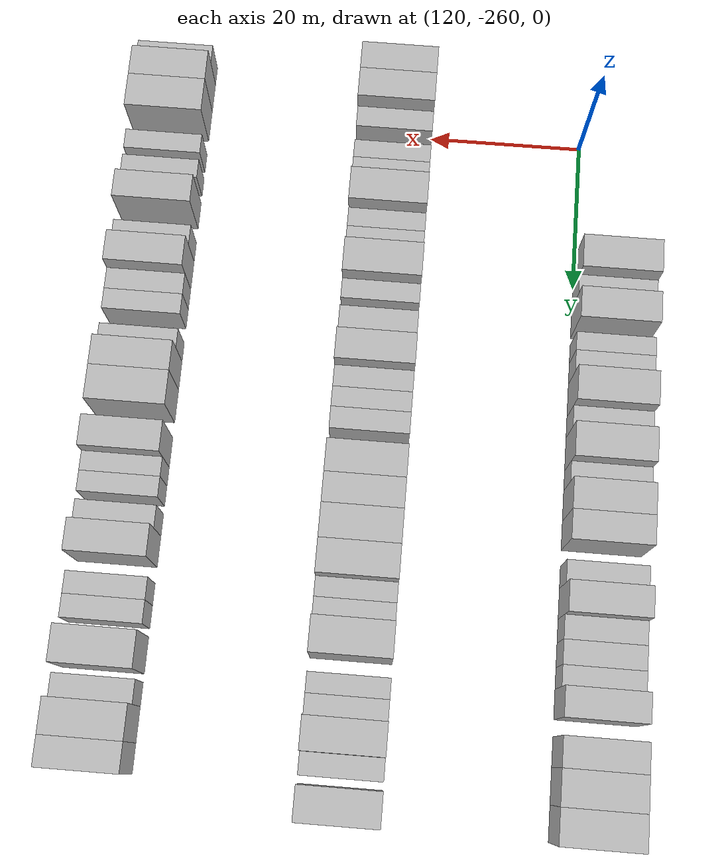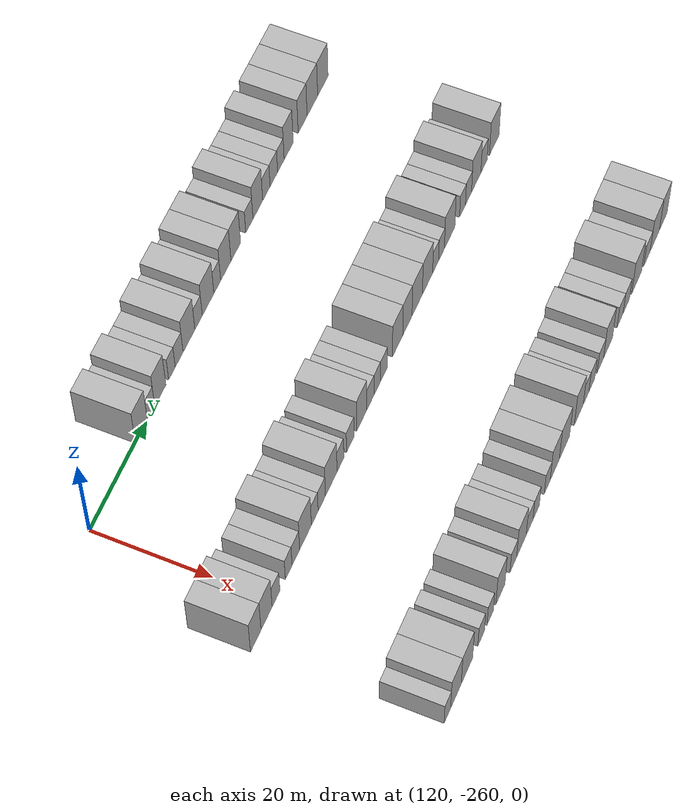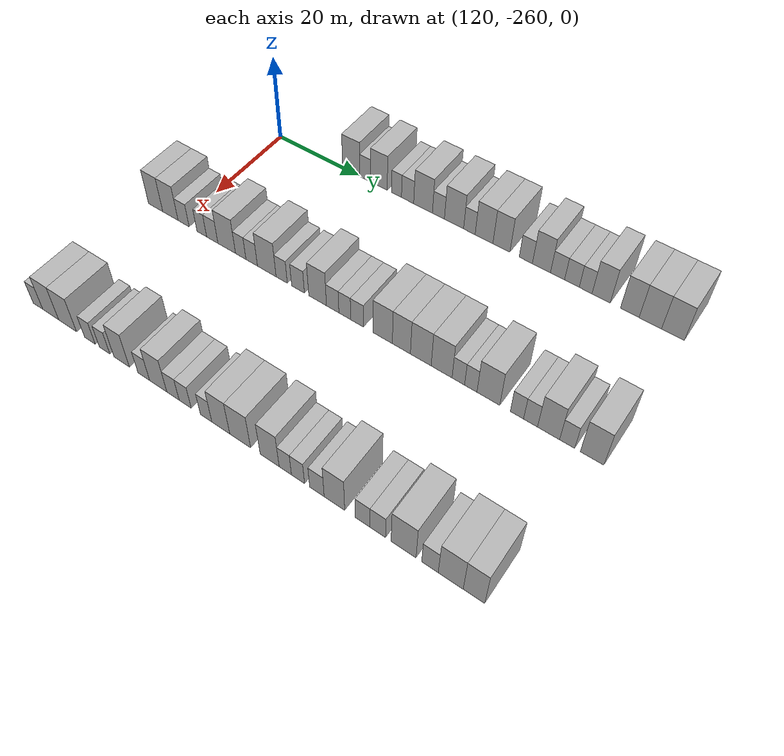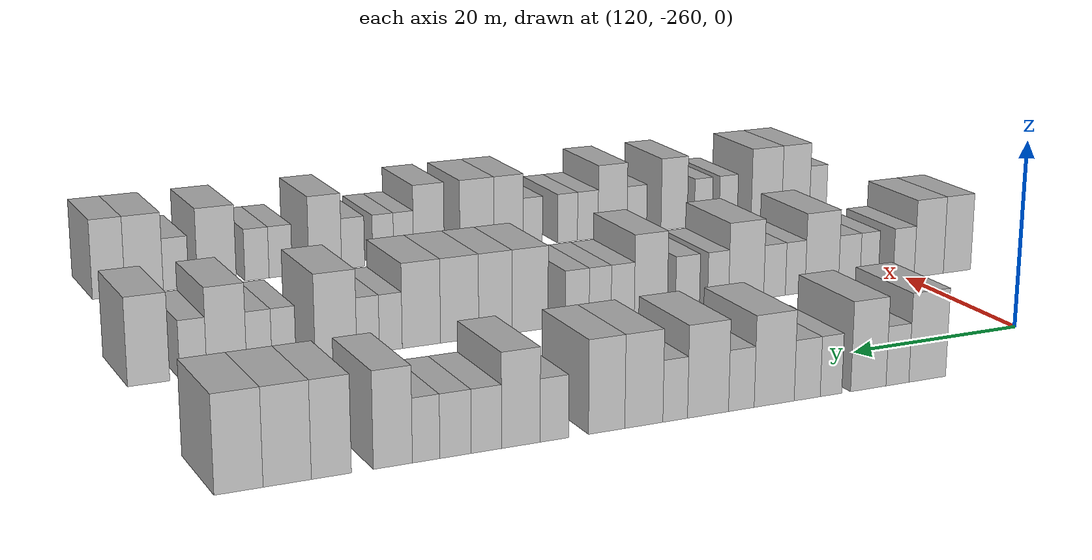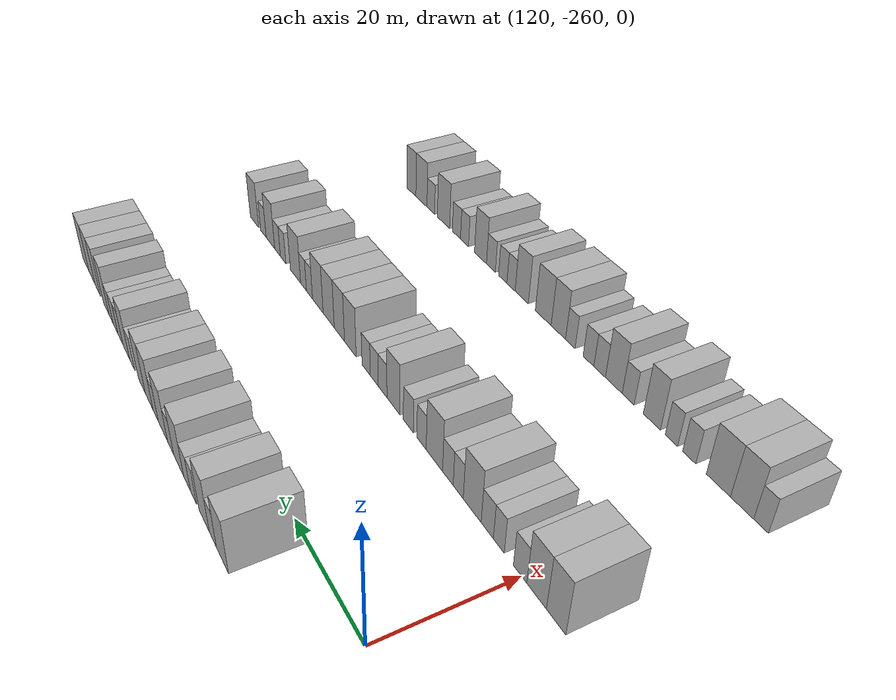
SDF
<sdf version="1.6">
 <world name="default">
  <model name="building_742">
   <static>1</static>
   <pose>115.0000 -241.9477 0 0.000000 0.000000 0.000000</pose>
   <link name="link">
    <pose>0 0 4.50 0 0 0</pose>
    <collision name="collision"><geometry><box><size>10.0000 4.2830 9.0000</size></box></geometry></collision>
    <visual name="visual">
     <cast_shadows>0</cast_shadows>
     <geometry><box><size>10.0000 4.2830 9.0000</size></box></geometry>
     <material>
      <script>
       <uri>model://HANNAS_wall/materials/scripts</uri>
       <uri>model://HANNAS_wall/materials/textures</uri>
       <name>vrc/HANNAS_wall</name>
      </script>
     </material>
    </visual>
   </link>
  </model>
  <model name="building_743">
   <static>1</static>
   <pose>115.0000 -238.4895 0 0.000000 0.000000 0.000000</pose>
   <link name="link">
    <pose>0 0 3.00 0 0 0</pose>
    <collision name="collision"><geometry><box><size>10.0000 2.6334 6.0000</size></box></geometry></collision>
    <visual name="visual">
     <cast_shadows>0</cast_shadows>
     <geometry><box><size>10.0000 2.6334 6.0000</size></box></geometry>
     <material>
      <script>
       <uri>model://HANNAS_wall/materials/scripts</uri>
       <uri>model://HANNAS_wall/materials/textures</uri>
       <name>vrc/HANNAS_wall</name>
      </script>
     </material>
    </visual>
   </link>
  </model>
  <model name="building_744">
   <static>1</static>
   <pose>115.0000 -235.1634 0 0.000000 0.000000 0.000000</pose>
   <link name="link">
    <pose>0 0 4.50 0 0 0</pose>
    <collision name="collision"><geometry><box><size>10.0000 4.0189 9.0000</size></box></geometry></collision>
    <visual name="visual">
     <cast_shadows>0</cast_shadows>
     <geometry><box><size>10.0000 4.0189 9.0000</size></box></geometry>
     <material>
      <script>
       <uri>model://HANNAS_wall/materials/scripts</uri>
       <uri>model://HANNAS_wall/materials/textures</uri>
       <name>vrc/HANNAS_wall</name>
      </script>
     </material>
    </visual>
   </link>
  </model>
  <model name="building_745">
   <static>1</static>
   <pose>115.0000 -230.9508 0 0.000000 0.000000 0.000000</pose>
   <link name="link">
    <pose>0 0 3.00 0 0 0</pose>
    <collision name="collision"><geometry><box><size>10.0000 2.4063 6.0000</size></box></geometry></collision>
    <visual name="visual">
     <cast_shadows>0</cast_shadows>
     <geometry><box><size>10.0000 2.4063 6.0000</size></box></geometry>
     <material>
      <script>
       <uri>model://HANNAS_wall/materials/scripts</uri>
       <uri>model://HANNAS_wall/materials/textures</uri>
       <name>vrc/HANNAS_wall</name>
      </script>
     </material>
    </visual>
   </link>
  </model>
  <model name="building_746">
   <static>1</static>
   <pose>115.0000 -228.3101 0 0.000000 0.000000 0.000000</pose>
   <link name="link">
    <pose>0 0 3.00 0 0 0</pose>
    <collision name="collision"><geometry><box><size>10.0000 2.8751 6.0000</size></box></geometry></collision>
    <visual name="visual">
     <cast_shadows>0</cast_shadows>
     <geometry><box><size>10.0000 2.8751 6.0000</size></box></geometry>
     <material>
      <script>
       <uri>model://HANNAS_wall/materials/scripts</uri>
       <uri>model://HANNAS_wall/materials/textures</uri>
       <name>vrc/HANNAS_wall</name>
      </script>
     </material>
    </visual>
   </link>
  </model>
  <model name="building_747">
   <static>1</static>
   <pose>115.0000 -224.6916 0 0.000000 0.000000 0.000000</pose>
   <link name="link">
    <pose>0 0 4.50 0 0 0</pose>
    <collision name="collision"><geometry><box><size>10.0000 4.3619 9.0000</size></box></geometry></collision>
    <visual name="visual">
     <cast_shadows>0</cast_shadows>
     <geometry><box><size>10.0000 4.3619 9.0000</size></box></geometry>
     <material>
      <script>
       <uri>model://HANNAS_wall/materials/scripts</uri>
       <uri>model://HANNAS_wall/materials/textures</uri>
       <name>vrc/HANNAS_wall</name>
      </script>
     </material>
    </visual>
   </link>
  </model>
  <model name="building_748">
   <static>1</static>
   <pose>115.0000 -221.1343 0 0.000000 0.000000 0.000000</pose>
   <link name="link">
    <pose>0 0 3.00 0 0 0</pose>
    <collision name="collision"><geometry><box><size>10.0000 2.7526 6.0000</size></box></geometry></collision>
    <visual name="visual">
     <cast_shadows>0</cast_shadows>
     <geometry><box><size>10.0000 2.7526 6.0000</size></box></geometry>
     <material>
      <script>
       <uri>model://HANNAS_wall/materials/scripts</uri>
       <uri>model://HANNAS_wall/materials/textures</uri>
       <name>vrc/HANNAS_wall</name>
      </script>
     </material>
    </visual>
   </link>
  </model>
  <model name="building_749">
   <static>1</static>
   <pose>115.0000 -217.5880 0 0.000000 0.000000 0.000000</pose>
   <link name="link">
    <pose>0 0 4.50 0 0 0</pose>
    <collision name="collision"><geometry><box><size>10.0000 4.3400 9.0000</size></box></geometry></collision>
    <visual name="visual">
     <cast_shadows>0</cast_shadows>
     <geometry><box><size>10.0000 4.3400 9.0000</size></box></geometry>
     <material>
      <script>
       <uri>model://HANNAS_wall/materials/scripts</uri>
       <uri>model://HANNAS_wall/materials/textures</uri>
       <name>vrc/HANNAS_wall</name>
      </script>
     </material>
    </visual>
   </link>
  </model>
  <model name="building_750">
   <static>1</static>
   <pose>115.0000 -214.1314 0 0.000000 0.000000 0.000000</pose>
   <link name="link">
    <pose>0 0 3.00 0 0 0</pose>
    <collision name="collision"><geometry><box><size>10.0000 2.5733 6.0000</size></box></geometry></collision>
    <visual name="visual">
     <cast_shadows>0</cast_shadows>
     <geometry><box><size>10.0000 2.5733 6.0000</size></box></geometry>
     <material>
      <script>
       <uri>model://HANNAS_wall/materials/scripts</uri>
       <uri>model://HANNAS_wall/materials/textures</uri>
       <name>vrc/HANNAS_wall</name>
      </script>
     </material>
    </visual>
   </link>
  </model>
  <model name="building_751">
   <static>1</static>
   <pose>115.0000 -210.8840 0 0.000000 0.000000 0.000000</pose>
   <link name="link">
    <pose>0 0 4.50 0 0 0</pose>
    <collision name="collision"><geometry><box><size>10.0000 3.9215 9.0000</size></box></geometry></collision>
    <visual name="visual">
     <cast_shadows>0</cast_shadows>
     <geometry><box><size>10.0000 3.9215 9.0000</size></box></geometry>
     <material>
      <script>
       <uri>model://HANNAS_wall/materials/scripts</uri>
       <uri>model://HANNAS_wall/materials/textures</uri>
       <name>vrc/HANNAS_wall</name>
      </script>
     </material>
    </visual>
   </link>
  </model>
  <model name="building_752">
   <static>1</static>
   <pose>115.0000 -207.0828 0 0.000000 0.000000 0.000000</pose>
   <link name="link">
    <pose>0 0 4.50 0 0 0</pose>
    <collision name="collision"><geometry><box><size>10.0000 3.6809 9.0000</size></box></geometry></collision>
    <visual name="visual">
     <cast_shadows>0</cast_shadows>
     <geometry><box><size>10.0000 3.6809 9.0000</size></box></geometry>
     <material>
      <script>
       <uri>model://HANNAS_wall/materials/scripts</uri>
       <uri>model://HANNAS_wall/materials/textures</uri>
       <name>vrc/HANNAS_wall</name>
      </script>
     </material>
    </visual>
   </link>
  </model>
  <model name="building_753">
   <static>1</static>
   <pose>115.0000 -201.8425 0 0.000000 0.000000 0.000000</pose>
   <link name="link">
    <pose>0 0 3.00 0 0 0</pose>
    <collision name="collision"><geometry><box><size>10.0000 2.7998 6.0000</size></box></geometry></collision>
    <visual name="visual">
     <cast_shadows>0</cast_shadows>
     <geometry><box><size>10.0000 2.7998 6.0000</size></box></geometry>
     <material>
      <script>
       <uri>model://HANNAS_wall/materials/scripts</uri>
       <uri>model://HANNAS_wall/materials/textures</uri>
       <name>vrc/HANNAS_wall</name>
      </script>
     </material>
    </visual>
   </link>
  </model>
  <model name="building_754">
   <static>1</static>
   <pose>115.0000 -198.5482 0 0.000000 0.000000 0.000000</pose>
   <link name="link">
    <pose>0 0 4.50 0 0 0</pose>
    <collision name="collision"><geometry><box><size>10.0000 3.7888 9.0000</size></box></geometry></collision>
    <visual name="visual">
     <cast_shadows>0</cast_shadows>
     <geometry><box><size>10.0000 3.7888 9.0000</size></box></geometry>
     <material>
      <script>
       <uri>model://HANNAS_wall/materials/scripts</uri>
       <uri>model://HANNAS_wall/materials/textures</uri>
       <name>vrc/HANNAS_wall</name>
      </script>
     </material>
    </visual>
   </link>
  </model>
  <model name="building_755">
   <static>1</static>
   <pose>115.0000 -195.1958 0 0.000000 0.000000 0.000000</pose>
   <link name="link">
    <pose>0 0 3.00 0 0 0</pose>
    <collision name="collision"><geometry><box><size>10.0000 2.9161 6.0000</size></box></geometry></collision>
    <visual name="visual">
     <cast_shadows>0</cast_shadows>
     <geometry><box><size>10.0000 2.9161 6.0000</size></box></geometry>
     <material>
      <script>
       <uri>model://HANNAS_wall/materials/scripts</uri>
       <uri>model://HANNAS_wall/materials/textures</uri>
       <name>vrc/HANNAS_wall</name>
      </script>
     </material>
    </visual>
   </link>
  </model>
  <model name="building_756">
   <static>1</static>
   <pose>115.0000 -192.2425 0 0.000000 0.000000 0.000000</pose>
   <link name="link">
    <pose>0 0 3.00 0 0 0</pose>
    <collision name="collision"><geometry><box><size>10.0000 2.9906 6.0000</size></box></geometry></collision>
    <visual name="visual">
     <cast_shadows>0</cast_shadows>
     <geometry><box><size>10.0000 2.9906 6.0000</size></box></geometry>
     <material>
      <script>
       <uri>model://HANNAS_wall/materials/scripts</uri>
       <uri>model://HANNAS_wall/materials/textures</uri>
       <name>vrc/HANNAS_wall</name>
      </script>
     </material>
    </visual>
   </link>
  </model>
  <model name="building_757">
   <static>1</static>
   <pose>115.0000 -189.4560 0 0.000000 0.000000 0.000000</pose>
   <link name="link">
    <pose>0 0 3.00 0 0 0</pose>
    <collision name="collision"><geometry><box><size>10.0000 2.5823 6.0000</size></box></geometry></collision>
    <visual name="visual">
     <cast_shadows>0</cast_shadows>
     <geometry><box><size>10.0000 2.5823 6.0000</size></box></geometry>
     <material>
      <script>
       <uri>model://HANNAS_wall/materials/scripts</uri>
       <uri>model://HANNAS_wall/materials/textures</uri>
       <name>vrc/HANNAS_wall</name>
      </script>
     </material>
    </visual>
   </link>
  </model>
  <model name="building_758">
   <static>1</static>
   <pose>115.0000 -186.3489 0 0.000000 0.000000 0.000000</pose>
   <link name="link">
    <pose>0 0 4.50 0 0 0</pose>
    <collision name="collision"><geometry><box><size>10.0000 3.6320 9.0000</size></box></geometry></collision>
    <visual name="visual">
     <cast_shadows>0</cast_shadows>
     <geometry><box><size>10.0000 3.6320 9.0000</size></box></geometry>
     <material>
      <script>
       <uri>model://HANNAS_wall/materials/scripts</uri>
       <uri>model://HANNAS_wall/materials/textures</uri>
       <name>vrc/HANNAS_wall</name>
      </script>
     </material>
    </visual>
   </link>
  </model>
  <model name="building_759">
   <static>1</static>
   <pose>115.0000 -180.7193 0 0.000000 0.000000 0.000000</pose>
   <link name="link">
    <pose>0 0 4.50 0 0 0</pose>
    <collision name="collision"><geometry><box><size>10.0000 3.6272 9.0000</size></box></geometry></collision>
    <visual name="visual">
     <cast_shadows>0</cast_shadows>
     <geometry><box><size>10.0000 3.6272 9.0000</size></box></geometry>
     <material>
      <script>
       <uri>model://HANNAS_wall/materials/scripts</uri>
       <uri>model://HANNAS_wall/materials/textures</uri>
       <name>vrc/HANNAS_wall</name>
      </script>
     </material>
    </visual>
   </link>
  </model>
  <model name="building_760">
   <static>1</static>
   <pose>115.0000 -176.7578 0 0.000000 0.000000 0.000000</pose>
   <link name="link">
    <pose>0 0 4.50 0 0 0</pose>
    <collision name="collision"><geometry><box><size>10.0000 4.2959 9.0000</size></box></geometry></collision>
    <visual name="visual">
     <cast_shadows>0</cast_shadows>
     <geometry><box><size>10.0000 4.2959 9.0000</size></box></geometry>
     <material>
      <script>
       <uri>model://HANNAS_wall/materials/scripts</uri>
       <uri>model://HANNAS_wall/materials/textures</uri>
       <name>vrc/HANNAS_wall</name>
      </script>
     </material>
    </visual>
   </link>
  </model>
  <model name="building_761">
   <static>1</static>
   <pose>115.0000 -172.4623 0 0.000000 0.000000 0.000000</pose>
   <link name="link">
    <pose>0 0 4.50 0 0 0</pose>
    <collision name="collision"><geometry><box><size>10.0000 4.2952 9.0000</size></box></geometry></collision>
    <visual name="visual">
     <cast_shadows>0</cast_shadows>
     <geometry><box><size>10.0000 4.2952 9.0000</size></box></geometry>
     <material>
      <script>
       <uri>model://HANNAS_wall/materials/scripts</uri>
       <uri>model://HANNAS_wall/materials/textures</uri>
       <name>vrc/HANNAS_wall</name>
      </script>
     </material>
    </visual>
   </link>
  </model>
  <model name="building_960">
   <static>1</static>
   <pose>145.0000 -266.9132 0 0.000000 0.000000 0.000000</pose>
   <link name="link">
    <pose>0 0 4.50 0 0 0</pose>
    <collision name="collision"><geometry><box><size>10.0000 3.7587 9.0000</size></box></geometry></collision>
    <visual name="visual">
     <cast_shadows>0</cast_shadows>
     <geometry><box><size>10.0000 3.7587 9.0000</size></box></geometry>
     <material>
      <script>
       <uri>model://HANNAS_wall/materials/scripts</uri>
       <uri>model://HANNAS_wall/materials/textures</uri>
       <name>vrc/HANNAS_wall</name>
      </script>
     </material>
    </visual>
   </link>
  </model>
  <model name="building_961">
   <static>1</static>
   <pose>145.0000 -263.0380 0 0.000000 0.000000 0.000000</pose>
   <link name="link">
    <pose>0 0 4.50 0 0 0</pose>
    <collision name="collision"><geometry><box><size>10.0000 3.9918 9.0000</size></box></geometry></collision>
    <visual name="visual">
     <cast_shadows>0</cast_shadows>
     <geometry><box><size>10.0000 3.9918 9.0000</size></box></geometry>
     <material>
      <script>
       <uri>model://HANNAS_wall/materials/scripts</uri>
       <uri>model://HANNAS_wall/materials/textures</uri>
       <name>vrc/HANNAS_wall</name>
      </script>
     </material>
    </visual>
   </link>
  </model>
  <model name="building_962">
   <static>1</static>
   <pose>145.0000 -259.6250 0 0.000000 0.000000 0.000000</pose>
   <link name="link">
    <pose>0 0 3.00 0 0 0</pose>
    <collision name="collision"><geometry><box><size>10.0000 2.8341 6.0000</size></box></geometry></collision>
    <visual name="visual">
     <cast_shadows>0</cast_shadows>
     <geometry><box><size>10.0000 2.8341 6.0000</size></box></geometry>
     <material>
      <script>
       <uri>model://HANNAS_wall/materials/scripts</uri>
       <uri>model://HANNAS_wall/materials/textures</uri>
       <name>vrc/HANNAS_wall</name>
      </script>
     </material>
    </visual>
   </link>
  </model>
  <model name="building_963">
   <static>1</static>
   <pose>145.0000 -254.9878 0 0.000000 0.000000 0.000000</pose>
   <link name="link">
    <pose>0 0 3.00 0 0 0</pose>
    <collision name="collision"><geometry><box><size>10.0000 2.4405 6.0000</size></box></geometry></collision>
    <visual name="visual">
     <cast_shadows>0</cast_shadows>
     <geometry><box><size>10.0000 2.4405 6.0000</size></box></geometry>
     <material>
      <script>
       <uri>model://HANNAS_wall/materials/scripts</uri>
       <uri>model://HANNAS_wall/materials/textures</uri>
       <name>vrc/HANNAS_wall</name>
      </script>
     </material>
    </visual>
   </link>
  </model>
  <model name="building_964">
   <static>1</static>
   <pose>145.0000 -252.3549 0 0.000000 0.000000 0.000000</pose>
   <link name="link">
    <pose>0 0 3.00 0 0 0</pose>
    <collision name="collision"><geometry><box><size>10.0000 2.8254 6.0000</size></box></geometry></collision>
    <visual name="visual">
     <cast_shadows>0</cast_shadows>
     <geometry><box><size>10.0000 2.8254 6.0000</size></box></geometry>
     <material>
      <script>
       <uri>model://HANNAS_wall/materials/scripts</uri>
       <uri>model://HANNAS_wall/materials/textures</uri>
       <name>vrc/HANNAS_wall</name>
      </script>
     </material>
    </visual>
   </link>
  </model>
  <model name="building_965">
   <static>1</static>
   <pose>145.0000 -248.7744 0 0.000000 0.000000 0.000000</pose>
   <link name="link">
    <pose>0 0 4.50 0 0 0</pose>
    <collision name="collision"><geometry><box><size>10.0000 4.3357 9.0000</size></box></geometry></collision>
    <visual name="visual">
     <cast_shadows>0</cast_shadows>
     <geometry><box><size>10.0000 4.3357 9.0000</size></box></geometry>
     <material>
      <script>
       <uri>model://HANNAS_wall/materials/scripts</uri>
       <uri>model://HANNAS_wall/materials/textures</uri>
       <name>vrc/HANNAS_wall</name>
      </script>
     </material>
    </visual>
   </link>
  </model>
  <model name="building_966">
   <static>1</static>
   <pose>145.0000 -245.3396 0 0.000000 0.000000 0.000000</pose>
   <link name="link">
    <pose>0 0 3.00 0 0 0</pose>
    <collision name="collision"><geometry><box><size>10.0000 2.5337 6.0000</size></box></geometry></collision>
    <visual name="visual">
     <cast_shadows>0</cast_shadows>
     <geometry><box><size>10.0000 2.5337 6.0000</size></box></geometry>
     <material>
      <script>
       <uri>model://HANNAS_wall/materials/scripts</uri>
       <uri>model://HANNAS_wall/materials/textures</uri>
       <name>vrc/HANNAS_wall</name>
      </script>
     </material>
    </visual>
   </link>
  </model>
  <model name="building_967">
   <static>1</static>
   <pose>145.0000 -242.6906 0 0.000000 0.000000 0.000000</pose>
   <link name="link">
    <pose>0 0 3.00 0 0 0</pose>
    <collision name="collision"><geometry><box><size>10.0000 2.7644 6.0000</size></box></geometry></collision>
    <visual name="visual">
     <cast_shadows>0</cast_shadows>
     <geometry><box><size>10.0000 2.7644 6.0000</size></box></geometry>
     <material>
      <script>
       <uri>model://HANNAS_wall/materials/scripts</uri>
       <uri>model://HANNAS_wall/materials/textures</uri>
       <name>vrc/HANNAS_wall</name>
      </script>
     </material>
    </visual>
   </link>
  </model>
  <model name="building_968">
   <static>1</static>
   <pose>145.0000 -239.1008 0 0.000000 0.000000 0.000000</pose>
   <link name="link">
    <pose>0 0 4.50 0 0 0</pose>
    <collision name="collision"><geometry><box><size>10.0000 4.4152 9.0000</size></box></geometry></collision>
    <visual name="visual">
     <cast_shadows>0</cast_shadows>
     <geometry><box><size>10.0000 4.4152 9.0000</size></box></geometry>
     <material>
      <script>
       <uri>model://HANNAS_wall/materials/scripts</uri>
       <uri>model://HANNAS_wall/materials/textures</uri>
       <name>vrc/HANNAS_wall</name>
      </script>
     </material>
    </visual>
   </link>
  </model>
  <model name="building_969">
   <static>1</static>
   <pose>145.0000 -235.5849 0 0.000000 0.000000 0.000000</pose>
   <link name="link">
    <pose>0 0 3.00 0 0 0</pose>
    <collision name="collision"><geometry><box><size>10.0000 2.6167 6.0000</size></box></geometry></collision>
    <visual name="visual">
     <cast_shadows>0</cast_shadows>
     <geometry><box><size>10.0000 2.6167 6.0000</size></box></geometry>
     <material>
      <script>
       <uri>model://HANNAS_wall/materials/scripts</uri>
       <uri>model://HANNAS_wall/materials/textures</uri>
       <name>vrc/HANNAS_wall</name>
      </script>
     </material>
    </visual>
   </link>
  </model>
  <model name="building_970">
   <static>1</static>
   <pose>145.0000 -231.8075 0 0.000000 0.000000 0.000000</pose>
   <link name="link">
    <pose>0 0 3.00 0 0 0</pose>
    <collision name="collision"><geometry><box><size>10.0000 2.9381 6.0000</size></box></geometry></collision>
    <visual name="visual">
     <cast_shadows>0</cast_shadows>
     <geometry><box><size>10.0000 2.9381 6.0000</size></box></geometry>
     <material>
      <script>
       <uri>model://HANNAS_wall/materials/scripts</uri>
       <uri>model://HANNAS_wall/materials/textures</uri>
       <name>vrc/HANNAS_wall</name>
      </script>
     </material>
    </visual>
   </link>
  </model>
  <model name="building_971">
   <static>1</static>
   <pose>145.0000 -227.3467 0 0.000000 0.000000 0.000000</pose>
   <link name="link">
    <pose>0 0 4.50 0 0 0</pose>
    <collision name="collision"><geometry><box><size>10.0000 3.9834 9.0000</size></box></geometry></collision>
    <visual name="visual">
     <cast_shadows>0</cast_shadows>
     <geometry><box><size>10.0000 3.9834 9.0000</size></box></geometry>
     <material>
      <script>
       <uri>model://HANNAS_wall/materials/scripts</uri>
       <uri>model://HANNAS_wall/materials/textures</uri>
       <name>vrc/HANNAS_wall</name>
      </script>
     </material>
    </visual>
   </link>
  </model>
  <model name="building_972">
   <static>1</static>
   <pose>145.0000 -223.9739 0 0.000000 0.000000 0.000000</pose>
   <link name="link">
    <pose>0 0 3.00 0 0 0</pose>
    <collision name="collision"><geometry><box><size>10.0000 2.7621 6.0000</size></box></geometry></collision>
    <visual name="visual">
     <cast_shadows>0</cast_shadows>
     <geometry><box><size>10.0000 2.7621 6.0000</size></box></geometry>
     <material>
      <script>
       <uri>model://HANNAS_wall/materials/scripts</uri>
       <uri>model://HANNAS_wall/materials/textures</uri>
       <name>vrc/HANNAS_wall</name>
      </script>
     </material>
    </visual>
   </link>
  </model>
  <model name="building_973">
   <static>1</static>
   <pose>145.0000 -221.2928 0 0.000000 0.000000 0.000000</pose>
   <link name="link">
    <pose>0 0 3.00 0 0 0</pose>
    <collision name="collision"><geometry><box><size>10.0000 2.6002 6.0000</size></box></geometry></collision>
    <visual name="visual">
     <cast_shadows>0</cast_shadows>
     <geometry><box><size>10.0000 2.6002 6.0000</size></box></geometry>
     <material>
      <script>
       <uri>model://HANNAS_wall/materials/scripts</uri>
       <uri>model://HANNAS_wall/materials/textures</uri>
       <name>vrc/HANNAS_wall</name>
      </script>
     </material>
    </visual>
   </link>
  </model>
  <model name="building_974">
   <static>1</static>
   <pose>145.0000 -218.5991 0 0.000000 0.000000 0.000000</pose>
   <link name="link">
    <pose>0 0 3.00 0 0 0</pose>
    <collision name="collision"><geometry><box><size>10.0000 2.7872 6.0000</size></box></geometry></collision>
    <visual name="visual">
     <cast_shadows>0</cast_shadows>
     <geometry><box><size>10.0000 2.7872 6.0000</size></box></geometry>
     <material>
      <script>
       <uri>model://HANNAS_wall/materials/scripts</uri>
       <uri>model://HANNAS_wall/materials/textures</uri>
       <name>vrc/HANNAS_wall</name>
      </script>
     </material>
    </visual>
   </link>
  </model>
  <model name="building_975">
   <static>1</static>
   <pose>145.0000 -213.1413 0 0.000000 0.000000 0.000000</pose>
   <link name="link">
    <pose>0 0 4.50 0 0 0</pose>
    <collision name="collision"><geometry><box><size>10.0000 4.1283 9.0000</size></box></geometry></collision>
    <visual name="visual">
     <cast_shadows>0</cast_shadows>
     <geometry><box><size>10.0000 4.1283 9.0000</size></box></geometry>
     <material>
      <script>
       <uri>model://HANNAS_wall/materials/scripts</uri>
       <uri>model://HANNAS_wall/materials/textures</uri>
       <name>vrc/HANNAS_wall</name>
      </script>
     </material>
    </visual>
   </link>
  </model>
  <model name="building_976">
   <static>1</static>
   <pose>145.0000 -209.1906 0 0.000000 0.000000 0.000000</pose>
   <link name="link">
    <pose>0 0 4.50 0 0 0</pose>
    <collision name="collision"><geometry><box><size>10.0000 3.7730 9.0000</size></box></geometry></collision>
    <visual name="visual">
     <cast_shadows>0</cast_shadows>
     <geometry><box><size>10.0000 3.7730 9.0000</size></box></geometry>
     <material>
      <script>
       <uri>model://HANNAS_wall/materials/scripts</uri>
       <uri>model://HANNAS_wall/materials/textures</uri>
       <name>vrc/HANNAS_wall</name>
      </script>
     </material>
    </visual>
   </link>
  </model>
  <model name="building_977">
   <static>1</static>
   <pose>145.0000 -205.1752 0 0.000000 0.000000 0.000000</pose>
   <link name="link">
    <pose>0 0 4.50 0 0 0</pose>
    <collision name="collision"><geometry><box><size>10.0000 4.2578 9.0000</size></box></geometry></collision>
    <visual name="visual">
     <cast_shadows>0</cast_shadows>
     <geometry><box><size>10.0000 4.2578 9.0000</size></box></geometry>
     <material>
      <script>
       <uri>model://HANNAS_wall/materials/scripts</uri>
       <uri>model://HANNAS_wall/materials/textures</uri>
       <name>vrc/HANNAS_wall</name>
      </script>
     </material>
    </visual>
   </link>
  </model>
  <model name="building_978">
   <static>1</static>
   <pose>145.0000 -200.9448 0 0.000000 0.000000 0.000000</pose>
   <link name="link">
    <pose>0 0 4.50 0 0 0</pose>
    <collision name="collision"><geometry><box><size>10.0000 4.2031 9.0000</size></box></geometry></collision>
    <visual name="visual">
     <cast_shadows>0</cast_shadows>
     <geometry><box><size>10.0000 4.2031 9.0000</size></box></geometry>
     <material>
      <script>
       <uri>model://HANNAS_wall/materials/scripts</uri>
       <uri>model://HANNAS_wall/materials/textures</uri>
       <name>vrc/HANNAS_wall</name>
      </script>
     </material>
    </visual>
   </link>
  </model>
  <model name="building_979">
   <static>1</static>
   <pose>145.0000 -197.6036 0 0.000000 0.000000 0.000000</pose>
   <link name="link">
    <pose>0 0 3.00 0 0 0</pose>
    <collision name="collision"><geometry><box><size>10.0000 2.4792 6.0000</size></box></geometry></collision>
    <visual name="visual">
     <cast_shadows>0</cast_shadows>
     <geometry><box><size>10.0000 2.4792 6.0000</size></box></geometry>
     <material>
      <script>
       <uri>model://HANNAS_wall/materials/scripts</uri>
       <uri>model://HANNAS_wall/materials/textures</uri>
       <name>vrc/HANNAS_wall</name>
      </script>
     </material>
    </visual>
   </link>
  </model>
  <model name="building_980">
   <static>1</static>
   <pose>145.0000 -195.1478 0 0.000000 0.000000 0.000000</pose>
   <link name="link">
    <pose>0 0 3.00 0 0 0</pose>
    <collision name="collision"><geometry><box><size>10.0000 2.4324 6.0000</size></box></geometry></collision>
    <visual name="visual">
     <cast_shadows>0</cast_shadows>
     <geometry><box><size>10.0000 2.4324 6.0000</size></box></geometry>
     <material>
      <script>
       <uri>model://HANNAS_wall/materials/scripts</uri>
       <uri>model://HANNAS_wall/materials/textures</uri>
       <name>vrc/HANNAS_wall</name>
      </script>
     </material>
    </visual>
   </link>
  </model>
  <model name="building_981">
   <static>1</static>
   <pose>145.0000 -191.7247 0 0.000000 0.000000 0.000000</pose>
   <link name="link">
    <pose>0 0 4.50 0 0 0</pose>
    <collision name="collision"><geometry><box><size>10.0000 4.4139 9.0000</size></box></geometry></collision>
    <visual name="visual">
     <cast_shadows>0</cast_shadows>
     <geometry><box><size>10.0000 4.4139 9.0000</size></box></geometry>
     <material>
      <script>
       <uri>model://HANNAS_wall/materials/scripts</uri>
       <uri>model://HANNAS_wall/materials/textures</uri>
       <name>vrc/HANNAS_wall</name>
      </script>
     </material>
    </visual>
   </link>
  </model>
  <model name="building_982">
   <static>1</static>
   <pose>145.0000 -186.2726 0 0.000000 0.000000 0.000000</pose>
   <link name="link">
    <pose>0 0 3.00 0 0 0</pose>
    <collision name="collision"><geometry><box><size>10.0000 2.4904 6.0000</size></box></geometry></collision>
    <visual name="visual">
     <cast_shadows>0</cast_shadows>
     <geometry><box><size>10.0000 2.4904 6.0000</size></box></geometry>
     <material>
      <script>
       <uri>model://HANNAS_wall/materials/scripts</uri>
       <uri>model://HANNAS_wall/materials/textures</uri>
       <name>vrc/HANNAS_wall</name>
      </script>
     </material>
    </visual>
   </link>
  </model>
  <model name="building_983">
   <static>1</static>
   <pose>145.0000 -183.7252 0 0.000000 0.000000 0.000000</pose>
   <link name="link">
    <pose>0 0 3.00 0 0 0</pose>
    <collision name="collision"><geometry><box><size>10.0000 2.6045 6.0000</size></box></geometry></collision>
    <visual name="visual">
     <cast_shadows>0</cast_shadows>
     <geometry><box><size>10.0000 2.6045 6.0000</size></box></geometry>
     <material>
      <script>
       <uri>model://HANNAS_wall/materials/scripts</uri>
       <uri>model://HANNAS_wall/materials/textures</uri>
       <name>vrc/HANNAS_wall</name>
      </script>
     </material>
    </visual>
   </link>
  </model>
  <model name="building_984">
   <static>1</static>
   <pose>145.0000 -180.4008 0 0.000000 0.000000 0.000000</pose>
   <link name="link">
    <pose>0 0 4.50 0 0 0</pose>
    <collision name="collision"><geometry><box><size>10.0000 4.0442 9.0000</size></box></geometry></collision>
    <visual name="visual">
     <cast_shadows>0</cast_shadows>
     <geometry><box><size>10.0000 4.0442 9.0000</size></box></geometry>
     <material>
      <script>
       <uri>model://HANNAS_wall/materials/scripts</uri>
       <uri>model://HANNAS_wall/materials/textures</uri>
       <name>vrc/HANNAS_wall</name>
      </script>
     </material>
    </visual>
   </link>
  </model>
  <model name="building_985">
   <static>1</static>
   <pose>145.0000 -177.0181 0 0.000000 0.000000 0.000000</pose>
   <link name="link">
    <pose>0 0 3.00 0 0 0</pose>
    <collision name="collision"><geometry><box><size>10.0000 2.7211 6.0000</size></box></geometry></collision>
    <visual name="visual">
     <cast_shadows>0</cast_shadows>
     <geometry><box><size>10.0000 2.7211 6.0000</size></box></geometry>
     <material>
      <script>
       <uri>model://HANNAS_wall/materials/scripts</uri>
       <uri>model://HANNAS_wall/materials/textures</uri>
       <name>vrc/HANNAS_wall</name>
      </script>
     </material>
    </visual>
   </link>
  </model>
  <model name="building_986">
   <static>1</static>
   <pose>145.0000 -172.5719 0 0.000000 0.000000 0.000000</pose>
   <link name="link">
    <pose>0 0 4.50 0 0 0</pose>
    <collision name="collision"><geometry><box><size>10.0000 4.1713 9.0000</size></box></geometry></collision>
    <visual name="visual">
     <cast_shadows>0</cast_shadows>
     <geometry><box><size>10.0000 4.1713 9.0000</size></box></geometry>
     <material>
      <script>
       <uri>model://HANNAS_wall/materials/scripts</uri>
       <uri>model://HANNAS_wall/materials/textures</uri>
       <name>vrc/HANNAS_wall</name>
      </script>
     </material>
    </visual>
   </link>
  </model>
  <model name="building_1191">
   <static>1</static>
   <pose>175.0000 -267.0515 0 0.000000 0.000000 0.000000</pose>
   <link name="link">
    <pose>0 0 3.00 0 0 0</pose>
    <collision name="collision"><geometry><box><size>10.0000 2.4910 6.0000</size></box></geometry></collision>
    <visual name="visual">
     <cast_shadows>0</cast_shadows>
     <geometry><box><size>10.0000 2.4910 6.0000</size></box></geometry>
     <material>
      <script>
       <uri>model://HANNAS_wall/materials/scripts</uri>
       <uri>model://HANNAS_wall/materials/textures</uri>
       <name>vrc/HANNAS_wall</name>
      </script>
     </material>
    </visual>
   </link>
  </model>
  <model name="building_1192">
   <static>1</static>
   <pose>175.0000 -263.7676 0 0.000000 0.000000 0.000000</pose>
   <link name="link">
    <pose>0 0 4.50 0 0 0</pose>
    <collision name="collision"><geometry><box><size>10.0000 4.0768 9.0000</size></box></geometry></collision>
    <visual name="visual">
     <cast_shadows>0</cast_shadows>
     <geometry><box><size>10.0000 4.0768 9.0000</size></box></geometry>
     <material>
      <script>
       <uri>model://HANNAS_wall/materials/scripts</uri>
       <uri>model://HANNAS_wall/materials/textures</uri>
       <name>vrc/HANNAS_wall</name>
      </script>
     </material>
    </visual>
   </link>
  </model>
  <model name="building_1193">
   <static>1</static>
   <pose>175.0000 -259.5033 0 0.000000 0.000000 0.000000</pose>
   <link name="link">
    <pose>0 0 4.50 0 0 0</pose>
    <collision name="collision"><geometry><box><size>10.0000 4.4518 9.0000</size></box></geometry></collision>
    <visual name="visual">
     <cast_shadows>0</cast_shadows>
     <geometry><box><size>10.0000 4.4518 9.0000</size></box></geometry>
     <material>
      <script>
       <uri>model://HANNAS_wall/materials/scripts</uri>
       <uri>model://HANNAS_wall/materials/textures</uri>
       <name>vrc/HANNAS_wall</name>
      </script>
     </material>
    </visual>
   </link>
  </model>
  <model name="building_1194">
   <static>1</static>
   <pose>175.0000 -253.9791 0 0.000000 0.000000 0.000000</pose>
   <link name="link">
    <pose>0 0 3.00 0 0 0</pose>
    <collision name="collision"><geometry><box><size>10.0000 2.5967 6.0000</size></box></geometry></collision>
    <visual name="visual">
     <cast_shadows>0</cast_shadows>
     <geometry><box><size>10.0000 2.5967 6.0000</size></box></geometry>
     <material>
      <script>
       <uri>model://HANNAS_wall/materials/scripts</uri>
       <uri>model://HANNAS_wall/materials/textures</uri>
       <name>vrc/HANNAS_wall</name>
      </script>
     </material>
    </visual>
   </link>
  </model>
  <model name="building_1195">
   <static>1</static>
   <pose>175.0000 -250.4199 0 0.000000 0.000000 0.000000</pose>
   <link name="link">
    <pose>0 0 3.00 0 0 0</pose>
    <collision name="collision"><geometry><box><size>10.0000 2.5216 6.0000</size></box></geometry></collision>
    <visual name="visual">
     <cast_shadows>0</cast_shadows>
     <geometry><box><size>10.0000 2.5216 6.0000</size></box></geometry>
     <material>
      <script>
       <uri>model://HANNAS_wall/materials/scripts</uri>
       <uri>model://HANNAS_wall/materials/textures</uri>
       <name>vrc/HANNAS_wall</name>
      </script>
     </material>
    </visual>
   </link>
  </model>
  <model name="building_1196">
   <static>1</static>
   <pose>175.0000 -246.3327 0 0.000000 0.000000 0.000000</pose>
   <link name="link">
    <pose>0 0 4.50 0 0 0</pose>
    <collision name="collision"><geometry><box><size>10.0000 3.6528 9.0000</size></box></geometry></collision>
    <visual name="visual">
     <cast_shadows>0</cast_shadows>
     <geometry><box><size>10.0000 3.6528 9.0000</size></box></geometry>
     <material>
      <script>
       <uri>model://HANNAS_wall/materials/scripts</uri>
       <uri>model://HANNAS_wall/materials/textures</uri>
       <name>vrc/HANNAS_wall</name>
      </script>
     </material>
    </visual>
   </link>
  </model>
  <model name="building_1197">
   <static>1</static>
   <pose>175.0000 -241.1592 0 0.000000 0.000000 0.000000</pose>
   <link name="link">
    <pose>0 0 3.00 0 0 0</pose>
    <collision name="collision"><geometry><box><size>10.0000 2.6942 6.0000</size></box></geometry></collision>
    <visual name="visual">
     <cast_shadows>0</cast_shadows>
     <geometry><box><size>10.0000 2.6942 6.0000</size></box></geometry>
     <material>
      <script>
       <uri>model://HANNAS_wall/materials/scripts</uri>
       <uri>model://HANNAS_wall/materials/textures</uri>
       <name>vrc/HANNAS_wall</name>
      </script>
     </material>
    </visual>
   </link>
  </model>
  <model name="building_1198">
   <static>1</static>
   <pose>175.0000 -237.8483 0 0.000000 0.000000 0.000000</pose>
   <link name="link">
    <pose>0 0 4.50 0 0 0</pose>
    <collision name="collision"><geometry><box><size>10.0000 3.9276 9.0000</size></box></geometry></collision>
    <visual name="visual">
     <cast_shadows>0</cast_shadows>
     <geometry><box><size>10.0000 3.9276 9.0000</size></box></geometry>
     <material>
      <script>
       <uri>model://HANNAS_wall/materials/scripts</uri>
       <uri>model://HANNAS_wall/materials/textures</uri>
       <name>vrc/HANNAS_wall</name>
      </script>
     </material>
    </visual>
   </link>
  </model>
  <model name="building_1199">
   <static>1</static>
   <pose>175.0000 -234.5000 0 0.000000 0.000000 0.000000</pose>
   <link name="link">
    <pose>0 0 3.00 0 0 0</pose>
    <collision name="collision"><geometry><box><size>10.0000 2.7689 6.0000</size></box></geometry></collision>
    <visual name="visual">
     <cast_shadows>0</cast_shadows>
     <geometry><box><size>10.0000 2.7689 6.0000</size></box></geometry>
     <material>
      <script>
       <uri>model://HANNAS_wall/materials/scripts</uri>
       <uri>model://HANNAS_wall/materials/textures</uri>
       <name>vrc/HANNAS_wall</name>
      </script>
     </material>
    </visual>
   </link>
  </model>
  <model name="building_1200">
   <static>1</static>
   <pose>175.0000 -231.7814 0 0.000000 0.000000 0.000000</pose>
   <link name="link">
    <pose>0 0 3.00 0 0 0</pose>
    <collision name="collision"><geometry><box><size>10.0000 2.6683 6.0000</size></box></geometry></collision>
    <visual name="visual">
     <cast_shadows>0</cast_shadows>
     <geometry><box><size>10.0000 2.6683 6.0000</size></box></geometry>
     <material>
      <script>
       <uri>model://HANNAS_wall/materials/scripts</uri>
       <uri>model://HANNAS_wall/materials/textures</uri>
       <name>vrc/HANNAS_wall</name>
      </script>
     </material>
    </visual>
   </link>
  </model>
  <model name="building_1201">
   <static>1</static>
   <pose>175.0000 -227.2012 0 0.000000 0.000000 0.000000</pose>
   <link name="link">
    <pose>0 0 3.00 0 0 0</pose>
    <collision name="collision"><geometry><box><size>10.0000 2.4920 6.0000</size></box></geometry></collision>
    <visual name="visual">
     <cast_shadows>0</cast_shadows>
     <geometry><box><size>10.0000 2.4920 6.0000</size></box></geometry>
     <material>
      <script>
       <uri>model://HANNAS_wall/materials/scripts</uri>
       <uri>model://HANNAS_wall/materials/textures</uri>
       <name>vrc/HANNAS_wall</name>
      </script>
     </material>
    </visual>
   </link>
  </model>
  <model name="building_1202">
   <static>1</static>
   <pose>175.0000 -224.0391 0 0.000000 0.000000 0.000000</pose>
   <link name="link">
    <pose>0 0 4.50 0 0 0</pose>
    <collision name="collision"><geometry><box><size>10.0000 3.8324 9.0000</size></box></geometry></collision>
    <visual name="visual">
     <cast_shadows>0</cast_shadows>
     <geometry><box><size>10.0000 3.8324 9.0000</size></box></geometry>
     <material>
      <script>
       <uri>model://HANNAS_wall/materials/scripts</uri>
       <uri>model://HANNAS_wall/materials/textures</uri>
       <name>vrc/HANNAS_wall</name>
      </script>
     </material>
    </visual>
   </link>
  </model>
  <model name="building_1203">
   <static>1</static>
   <pose>175.0000 -219.9350 0 0.000000 0.000000 0.000000</pose>
   <link name="link">
    <pose>0 0 4.50 0 0 0</pose>
    <collision name="collision"><geometry><box><size>10.0000 4.3757 9.0000</size></box></geometry></collision>
    <visual name="visual">
     <cast_shadows>0</cast_shadows>
     <geometry><box><size>10.0000 4.3757 9.0000</size></box></geometry>
     <material>
      <script>
       <uri>model://HANNAS_wall/materials/scripts</uri>
       <uri>model://HANNAS_wall/materials/textures</uri>
       <name>vrc/HANNAS_wall</name>
      </script>
     </material>
    </visual>
   </link>
  </model>
  <model name="building_1204">
   <static>1</static>
   <pose>175.0000 -213.8133 0 0.000000 0.000000 0.000000</pose>
   <link name="link">
    <pose>0 0 4.50 0 0 0</pose>
    <collision name="collision"><geometry><box><size>10.0000 3.8678 9.0000</size></box></geometry></collision>
    <visual name="visual">
     <cast_shadows>0</cast_shadows>
     <geometry><box><size>10.0000 3.8678 9.0000</size></box></geometry>
     <material>
      <script>
       <uri>model://HANNAS_wall/materials/scripts</uri>
       <uri>model://HANNAS_wall/materials/textures</uri>
       <name>vrc/HANNAS_wall</name>
      </script>
     </material>
    </visual>
   </link>
  </model>
  <model name="building_1205">
   <static>1</static>
   <pose>175.0000 -210.6451 0 0.000000 0.000000 0.000000</pose>
   <link name="link">
    <pose>0 0 3.00 0 0 0</pose>
    <collision name="collision"><geometry><box><size>10.0000 2.4686 6.0000</size></box></geometry></collision>
    <visual name="visual">
     <cast_shadows>0</cast_shadows>
     <geometry><box><size>10.0000 2.4686 6.0000</size></box></geometry>
     <material>
      <script>
       <uri>model://HANNAS_wall/materials/scripts</uri>
       <uri>model://HANNAS_wall/materials/textures</uri>
       <name>vrc/HANNAS_wall</name>
      </script>
     </material>
    </visual>
   </link>
  </model>
  <model name="building_1206">
   <static>1</static>
   <pose>175.0000 -208.1162 0 0.000000 0.000000 0.000000</pose>
   <link name="link">
    <pose>0 0 3.00 0 0 0</pose>
    <collision name="collision"><geometry><box><size>10.0000 2.5892 6.0000</size></box></geometry></collision>
    <visual name="visual">
     <cast_shadows>0</cast_shadows>
     <geometry><box><size>10.0000 2.5892 6.0000</size></box></geometry>
     <material>
      <script>
       <uri>model://HANNAS_wall/materials/scripts</uri>
       <uri>model://HANNAS_wall/materials/textures</uri>
       <name>vrc/HANNAS_wall</name>
      </script>
     </material>
    </visual>
   </link>
  </model>
  <model name="building_1207">
   <static>1</static>
   <pose>175.0000 -204.4113 0 0.000000 0.000000 0.000000</pose>
   <link name="link">
    <pose>0 0 3.00 0 0 0</pose>
    <collision name="collision"><geometry><box><size>10.0000 2.8205 6.0000</size></box></geometry></collision>
    <visual name="visual">
     <cast_shadows>0</cast_shadows>
     <geometry><box><size>10.0000 2.8205 6.0000</size></box></geometry>
     <material>
      <script>
       <uri>model://HANNAS_wall/materials/scripts</uri>
       <uri>model://HANNAS_wall/materials/textures</uri>
       <name>vrc/HANNAS_wall</name>
      </script>
     </material>
    </visual>
   </link>
  </model>
  <model name="building_1208">
   <static>1</static>
   <pose>175.0000 -201.0281 0 0.000000 0.000000 0.000000</pose>
   <link name="link">
    <pose>0 0 4.50 0 0 0</pose>
    <collision name="collision"><geometry><box><size>10.0000 3.9458 9.0000</size></box></geometry></collision>
    <visual name="visual">
     <cast_shadows>0</cast_shadows>
     <geometry><box><size>10.0000 3.9458 9.0000</size></box></geometry>
     <material>
      <script>
       <uri>model://HANNAS_wall/materials/scripts</uri>
       <uri>model://HANNAS_wall/materials/textures</uri>
       <name>vrc/HANNAS_wall</name>
      </script>
     </material>
    </visual>
   </link>
  </model>
  <model name="building_1209">
   <static>1</static>
   <pose>175.0000 -195.6814 0 0.000000 0.000000 0.000000</pose>
   <link name="link">
    <pose>0 0 3.00 0 0 0</pose>
    <collision name="collision"><geometry><box><size>10.0000 2.7477 6.0000</size></box></geometry></collision>
    <visual name="visual">
     <cast_shadows>0</cast_shadows>
     <geometry><box><size>10.0000 2.7477 6.0000</size></box></geometry>
     <material>
      <script>
       <uri>model://HANNAS_wall/materials/scripts</uri>
       <uri>model://HANNAS_wall/materials/textures</uri>
       <name>vrc/HANNAS_wall</name>
      </script>
     </material>
    </visual>
   </link>
  </model>
  <model name="building_1210">
   <static>1</static>
   <pose>175.0000 -192.8823 0 0.000000 0.000000 0.000000</pose>
   <link name="link">
    <pose>0 0 3.00 0 0 0</pose>
    <collision name="collision"><geometry><box><size>10.0000 2.8504 6.0000</size></box></geometry></collision>
    <visual name="visual">
     <cast_shadows>0</cast_shadows>
     <geometry><box><size>10.0000 2.8504 6.0000</size></box></geometry>
     <material>
      <script>
       <uri>model://HANNAS_wall/materials/scripts</uri>
       <uri>model://HANNAS_wall/materials/textures</uri>
       <name>vrc/HANNAS_wall</name>
      </script>
     </material>
    </visual>
   </link>
  </model>
  <model name="building_1211">
   <static>1</static>
   <pose>175.0000 -188.2092 0 0.000000 0.000000 0.000000</pose>
   <link name="link">
    <pose>0 0 4.50 0 0 0</pose>
    <collision name="collision"><geometry><box><size>10.0000 4.4959 9.0000</size></box></geometry></collision>
    <visual name="visual">
     <cast_shadows>0</cast_shadows>
     <geometry><box><size>10.0000 4.4959 9.0000</size></box></geometry>
     <material>
      <script>
       <uri>model://HANNAS_wall/materials/scripts</uri>
       <uri>model://HANNAS_wall/materials/textures</uri>
       <name>vrc/HANNAS_wall</name>
      </script>
     </material>
    </visual>
   </link>
  </model>
  <model name="building_1212">
   <static>1</static>
   <pose>175.0000 -183.5108 0 0.000000 0.000000 0.000000</pose>
   <link name="link">
    <pose>0 0 3.00 0 0 0</pose>
    <collision name="collision"><geometry><box><size>10.0000 2.9008 6.0000</size></box></geometry></collision>
    <visual name="visual">
     <cast_shadows>0</cast_shadows>
     <geometry><box><size>10.0000 2.9008 6.0000</size></box></geometry>
     <material>
      <script>
       <uri>model://HANNAS_wall/materials/scripts</uri>
       <uri>model://HANNAS_wall/materials/textures</uri>
       <name>vrc/HANNAS_wall</name>
      </script>
     </material>
    </visual>
   </link>
  </model>
  <model name="building_1213">
   <static>1</static>
   <pose>175.0000 -179.9080 0 0.000000 0.000000 0.000000</pose>
   <link name="link">
    <pose>0 0 4.50 0 0 0</pose>
    <collision name="collision"><geometry><box><size>10.0000 4.3048 9.0000</size></box></geometry></collision>
    <visual name="visual">
     <cast_shadows>0</cast_shadows>
     <geometry><box><size>10.0000 4.3048 9.0000</size></box></geometry>
     <material>
      <script>
       <uri>model://HANNAS_wall/materials/scripts</uri>
       <uri>model://HANNAS_wall/materials/textures</uri>
       <name>vrc/HANNAS_wall</name>
      </script>
     </material>
    </visual>
   </link>
  </model>
  <model name="building_1214">
   <static>1</static>
   <pose>175.0000 -175.9371 0 0.000000 0.000000 0.000000</pose>
   <link name="link">
    <pose>0 0 4.50 0 0 0</pose>
    <collision name="collision"><geometry><box><size>10.0000 3.6370 9.0000</size></box></geometry></collision>
    <visual name="visual">
     <cast_shadows>0</cast_shadows>
     <geometry><box><size>10.0000 3.6370 9.0000</size></box></geometry>
     <material>
      <script>
       <uri>model://HANNAS_wall/materials/scripts</uri>
       <uri>model://HANNAS_wall/materials/textures</uri>
       <name>vrc/HANNAS_wall</name>
      </script>
     </material>
    </visual>
   </link>
  </model>
 </world>
</sdf>
